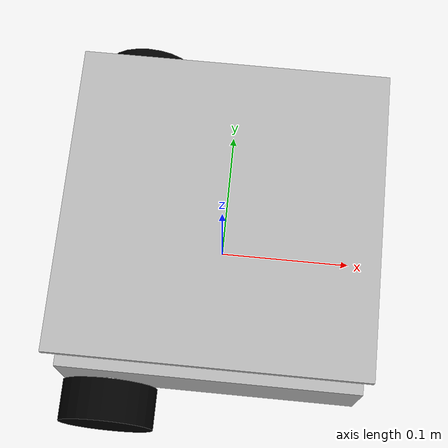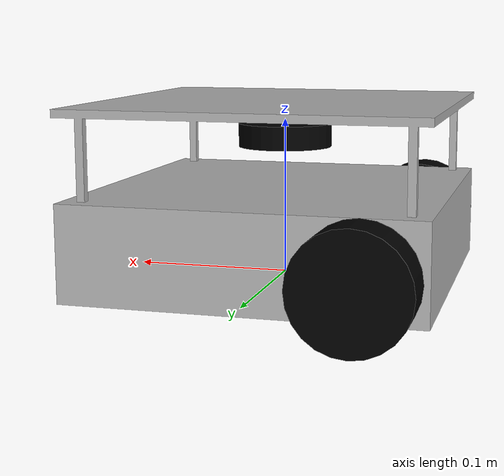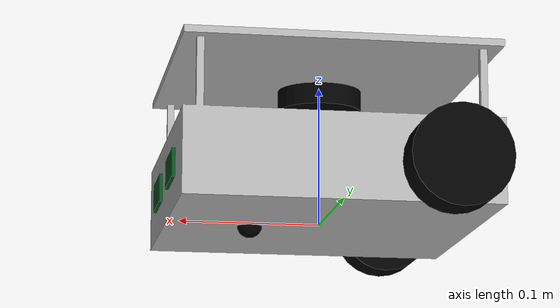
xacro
<?xml version="1.0"?>
<robot xmlns:xacro="http://www.ros.org/wiki/xacro" name="stembot_bringup">

    <!-- Colours -->
    <xacro:include filename="materials.xacro" />

    <!-- Main robot structure -->
    <xacro:include filename="stembot_core.xacro" />

    <!-- Lidar sensor -->
    <xacro:include filename="lidar.xacro" />

    <!-- IMU sensor -->
    <xacro:include filename="imu.xacro" />

    <!-- Ultrasonic sensors -->
    <xacro:include filename="ultra_f1.xacro" />
    <xacro:include filename="ultra_f2.xacro" />

</robot>

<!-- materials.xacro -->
<robot xmlns:xacro="http://www.ros.org/wiki/xacro" name="stembot_bringup">

    <!-- Material declarations -->
    <material name="black">
        <color rgba="0 0 0 1" />
    </material>

    <material name="sap">
        <color rgba="0.035 0.301 0.110 1.000" />
    </material>

    <material name="red">
        <color rgba="0.700 0.000 0.000 1.000" />
    </material>

    <material name="brown">
        <color rgba="0.588 0.294 0.000 1.000" />
    </material>

    <material name="silver">
        <color rgba="0.700 0.700 0.700 1.000" />
    </material>

</robot>

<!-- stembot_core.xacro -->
<robot xmlns:xacro="http://www.ros.org/wiki/xacro" name="stembot_bringup">

    <xacro:property name="chassis_length" value="0.22" />
    <xacro:property name="chassis_breadth" value="0.22" />
    <xacro:property name="chassis_height" value="0.005" />

    <xacro:property name="frame_mass" value="0.859" />
    <xacro:property name="payload_mass" value="0.0" />

    <xacro:property name="wheel_length" value="0.03" />
    <xacro:property name="wheel_radius" value="0.035" />
    <xacro:property name="chassis_wheel_x_offset" value="${(chassis_length/2)-0.038}" />
    <xacro:property name="chassis_wheel_offset_height" value="${-0.026}" />

    <xacro:property name="wheel_separation" value="0.26" />
    <xacro:property name="wheel_mass" value="0.1" />

    <xacro:property name="caster_pos_x" value="${(chassis_length/2)-0.06}" />
    <xacro:property name="caster_pos_y" value="${(chassis_breadth/2)-0.1}" />

    <!-- Wheel xacro -->
    <xacro:macro name="wheel" params="prefix reflect_x reflect_y">

        <link name="${prefix}_wheel_link">

            <visual>
                <geometry>
                    <cylinder radius="${wheel_radius}" length="${wheel_length}" />
                </geometry>
                <material name="black" />
            </visual>
            <collision>
                <geometry>
                    <cylinder radius="${wheel_radius}" length="${wheel_length}" />
                </geometry>
            </collision>
            <inertial>
                <mass value="${wheel_mass}" />
                <origin xyz="0 0 0" rpy="${pi/2} 0 0" />
                <inertia
                    ixx="${1/12*wheel_mass*(3*(wheel_radius*wheel_radius)+(wheel_length*wheel_length))}"
                    iyy="${1/12*wheel_mass*(3*(wheel_radius*wheel_radius)+(wheel_length*wheel_length))}"
                    izz="${1/2*wheel_mass*(wheel_radius*wheel_radius)}"
                    ixy="0.0" iyz="0.0" ixz="0.0" />
            </inertial>

        </link>

        <joint name="${prefix}_wheel_joint" type="continuous">

            <parent link="base_link" />
            <child link="${prefix}_wheel_link" />
            <origin
                xyz="${-reflect_x*(chassis_wheel_x_offset)} ${-reflect_y*(wheel_separation/2)} ${-(chassis_wheel_offset_height+(chassis_height/2))}"
                rpy="${pi/2} 0 0" />
            <axis xyz="0.0 0.0 -1.0" />
            <limit effort="0.56" velocity="12.56" />

        </joint>

    </xacro:macro>

    <!-- Caster wheel xacro -->
    <xacro:macro name="caster_wheel" params="prefix reflect">

        <link name="${prefix}_caster_link">

            <visual>
                <origin
                    xyz="0 0 0"
                    rpy="0 0 0" />
                <geometry>
                    <sphere radius="0.009" />
                </geometry>
                <material name="black" />
            </visual>
            <collision>
                <origin
                    xyz="0 0 0"
                    rpy="0 0 0" />
                <geometry>
                    <sphere radius="0.009" />
                </geometry>
            </collision>

        </link>
        <joint name="${prefix}_caster_joint" type="fixed">

            <parent link="base_link" />
            <child link="${prefix}_caster_link" />
            <origin xyz="${caster_pos_x} ${-reflect*caster_pos_y} ${-(chassis_wheel_offset_height+(chassis_height/2)+wheel_radius-0.01)}" rpy="0 0 0" />

        </joint>

    </xacro:macro>

    <!-- Frame -->
    <!-- TODO: Fix and verify interial parameters for this -->
    <link name="base_footprint">
    </link>
    <link name="base_link">

        <visual>
            <origin
                xyz="${(chassis_length/2)} ${-(chassis_breadth/2)} ${-chassis_height/2}"
                rpy="0 0 ${pi/2}" />
            <geometry>
                <mesh filename="package://stembot_bringup/urdf/meshes/chassis.stl" />
            </geometry>
            <material name="silver" />
        </visual>
        <collision>
            <origin
                xyz="${(chassis_length/2)} ${-(chassis_breadth/2)} ${-chassis_height/2}"
                rpy="0 0 ${pi/2}" />
            <geometry>
                <mesh filename="package://stembot_bringup/urdf/meshes/chassis.stl" />
            </geometry>
        </collision>
        <inertial>
            <mass value="${frame_mass + payload_mass}" />
            <origin xyz="0.110000 0.110344 0.053552" rpy="0 0 0" />
            <inertia
                ixx="0.000006"
                iyy="0.000006"
                izz="0.000008"
                ixy="0.0" iyz="0.0" ixz="0.0" />
        </inertial>

    </link>
    <joint name="base_joint" type="fixed">

        <parent link="base_footprint" />
        <child link="base_link" />

    </joint>

    <xacro:wheel prefix="right" reflect_x="1" reflect_y="1" />
    <xacro:wheel prefix="left" reflect_x="1" reflect_y="-1" />

    <xacro:caster_wheel prefix="center" reflect="0" />

</robot>

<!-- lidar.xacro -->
<robot xmlns:xacro="http://www.ros.org/wiki/xacro" name="stembot_bringup">

    <!-- Constants -->
    <xacro:property name="lidar_mass" value="0.03" />
    <xacro:property name="lidar_radius" value="0.03" />
    <xacro:property name="lidar_thickness" value="0.015" />

    <xacro:property name="lidar_pos_x" value="0" />
    <xacro:property name="lidar_pos_y" value="0" />
    <xacro:property name="lidar_pos_z" value="0.09" />

    <!-- Model -->
    <link name="lidar_link">

        <visual>
            <geometry>
                <cylinder radius="${lidar_radius}" length="${lidar_thickness}" />
            </geometry>
            <material name="black" />
        </visual>
        <collision>
            <geometry>
                <cylinder radius="${lidar_radius}" length="${lidar_thickness}" />
            </geometry>
        </collision>
        <inertial>
            <origin xyz="0 0 0" rpy="0 0 0" />
            <mass value="${lidar_mass}" />
            <inertia
                ixx="${1/12*lidar_mass*(3*(lidar_radius*lidar_radius)+(lidar_thickness*lidar_thickness))}"
                iyy="${1/12*lidar_mass*(3*(lidar_radius*lidar_radius)+(lidar_thickness*lidar_thickness))}"
                izz="${1/2*lidar_mass*(lidar_radius*lidar_radius)}"
                ixy="0.0" iyz="0.0" ixz="0.0" />
        </inertial>

    </link>

    <joint name="lidar_joint" type="fixed">

        <parent link="base_link" />
        <child link="lidar_link" />
        <origin xyz="${lidar_pos_x} ${lidar_pos_y} ${lidar_pos_z}" rpy="0 0 0" />

    </joint>

    <!-- Plugin -->

    <gazebo reference="lidar_link">

        <sensor name="lidar" type="gpu_lidar">

            <pose> 0 0 0 0 0 0 </pose>
            <visualize>false</visualize>
            <update_rate>10</update_rate>
            <lidar>
                <scan>
                    <horizontal>
                        <samples>360</samples>
                        <min_angle>-${pi}</min_angle>
                        <max_angle>${pi}</max_angle>
                    </horizontal>
                </scan>
                <range>
                    <min>0.3</min>
                    <max>12</max>
                </range>
            </lidar>
            <topic>scan</topic>
            <gz_frame_id>lidar_link</gz_frame_id>

        </sensor>

    </gazebo>

</robot>

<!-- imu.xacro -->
<robot xmlns:xacro="http://www.ros.org/wiki/xacro" name="stembot_bringup">

    <!-- Constants -->
    <xacro:property name="imu_size" value="0.03 0.03 0.002" />
    <xacro:property name="imu_pos" value="0 0 0.0195" />
    <xacro:property name="imu_rpy" value="0 0 0" />

    <!-- Model -->
    <link name="imu_link">

        <origin xyz="0 0 0" rpy="0 0 0"/>
        <visual>
            <material name="sap" />
            <geometry>
                <box size="${imu_size}" />
            </geometry>
        </visual>

    </link>
    <joint name="imu_joint" type="fixed">

        <parent link="base_link" />
        <child link="imu_link" />
        <origin xyz="${imu_pos}" rpy="${imu_rpy}" />

    </joint>

    <!-- Plugin -->
    <gazebo reference="imu_link">

        <sensor name="imu_sensor" type="imu">
            <always_on>true</always_on>
            <update_rate>30</update_rate>
            <visualize>true</visualize>
            <topic>imu</topic>
            <gz_frame_id>imu_link</gz_frame_id>
        </sensor>

    </gazebo>

</robot>

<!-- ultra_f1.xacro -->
<robot xmlns:xacro="http://www.ros.org/wiki/xacro" name="stembot_bringup">

    <!-- Constants -->
    <xacro:property name="ultra_size" value="0.005 0.045 0.02" />
    <xacro:property name="ultra_pos" value="0.11 0.0435 0.028" />
    <xacro:property name="ultra_rpy" value="0 0 0" />

    <!-- Model -->
    <link name="ultra_f1_link">

        <origin xyz="${ultra_pos}" rpy="${ultra_pos}"/>
        <visual>
            <material name="sap" />
            <geometry>
                <box size="${ultra_size}" />
            </geometry>
        </visual>

    </link>
    <joint name="ultra_f1_joint" type="fixed">

        <parent link="base_link" />
        <child link="ultra_f1_link" />
        <origin xyz="${ultra_pos}" rpy="${ultra_rpy}" />

    </joint>

</robot>

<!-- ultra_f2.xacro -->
<robot xmlns:xacro="http://www.ros.org/wiki/xacro" name="stembot_bringup">

    <!-- Constants -->
    <xacro:property name="ultra_size" value="0.005 0.045 0.02" />
    <xacro:property name="ultra_pos" value="0.11 -0.0435 0.028" />
    <xacro:property name="ultra_rpy" value="0 0 0" />

    <!-- Model -->
    <link name="ultra_f2_link">

        <origin xyz="${ultra_pos}" rpy="${ultra_pos}"/>
        <visual>
            <material name="sap" />
            <geometry>
                <box size="${ultra_size}" />
            </geometry>
        </visual>

    </link>
    <joint name="ultra_f2_joint" type="fixed">

        <parent link="base_link" />
        <child link="ultra_f2_link" />
        <origin xyz="${ultra_pos}" rpy="${ultra_rpy}" />

    </joint>

</robot>
